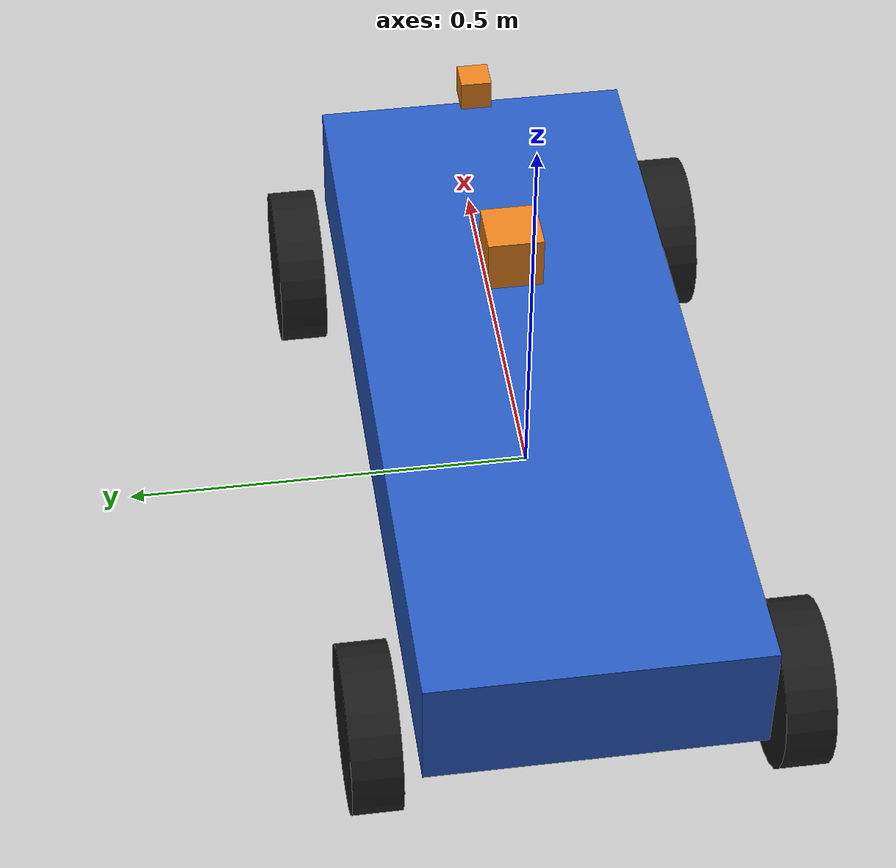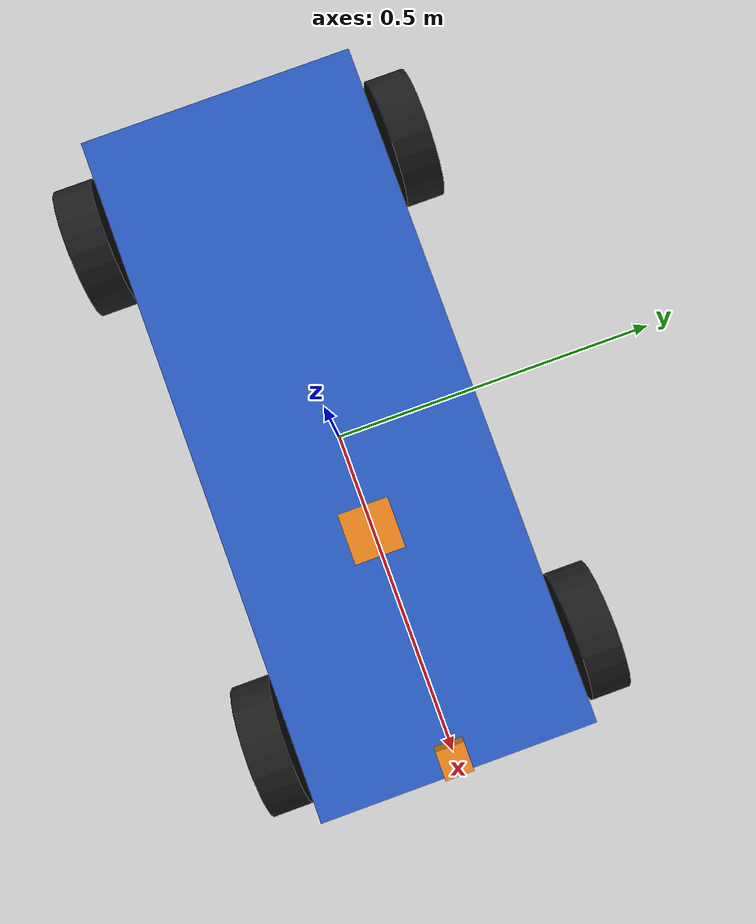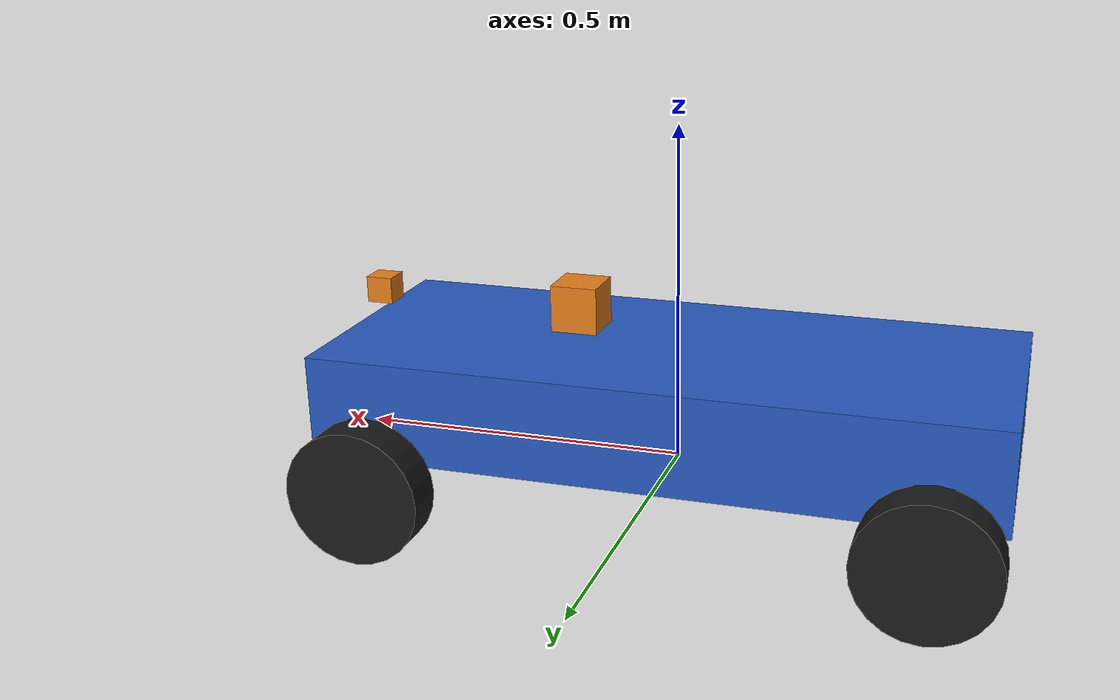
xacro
<?xml version="1.0"?>
<robot name="course_ackermann" xmlns:xacro="http://www.ros.org/wiki/xacro">

  <!-- ===== Parameters ===== -->
  <xacro:property name="wheelbase"       value="0.8"/>
  <xacro:property name="track_width"     value="0.5"/>
  <xacro:property name="wheel_radius"    value="0.1"/>
  <xacro:property name="wheel_width"     value="0.06"/>
  <xacro:property name="wheel_mass"      value="0.8"/>
  <xacro:property name="max_steer"       value="0.45"/>

  <xacro:property name="chassis_length"  value="1.0"/>
  <xacro:property name="chassis_width"   value="0.4"/>
  <xacro:property name="chassis_height"  value="0.15"/>
  <xacro:property name="chassis_z"       value="0.1"/>
  <xacro:property name="chassis_mass"    value="12.0"/>

  <xacro:property name="chassis_top"     value="${chassis_z + chassis_height / 2}"/>

  <xacro:property name="camera_x" value="${chassis_length / 2 - 0.03}"/>
  <xacro:property name="camera_z" value="${chassis_top + 0.05}"/>
  <xacro:property name="lidar_x"  value="0.15"/>
  <xacro:property name="lidar_z"  value="${chassis_top + 0.05}"/>
  <xacro:property name="imu_x"    value="0.0"/>
  <xacro:property name="imu_z"    value="${chassis_z}"/>

  <!-- ===== Materials ===== -->
  <material name="body"><color rgba="0.15 0.35 0.75 1"/></material>
  <material name="tire"><color rgba="0.1 0.1 0.1 1"/></material>
  <material name="sensor"><color rgba="0.9 0.5 0.1 1"/></material>

  <!-- ===== Inertia helpers ===== -->
  <xacro:macro name="box_inertial" params="m x y z *origin">
    <inertial>
      <xacro:insert_block name="origin"/>
      <mass value="${m}"/>
      <inertia ixx="${m * (y*y + z*z) / 12}" ixy="0" ixz="0"
               iyy="${m * (x*x + z*z) / 12}" iyz="0"
               izz="${m * (x*x + y*y) / 12}"/>
    </inertial>
  </xacro:macro>

  <!-- solid cylinder, axis along its own z -->
  <xacro:macro name="cylinder_inertial" params="m r h *origin">
    <inertial>
      <xacro:insert_block name="origin"/>
      <mass value="${m}"/>
      <inertia ixx="${m * (3*r*r + h*h) / 12}" ixy="0" ixz="0"
               iyy="${m * (3*r*r + h*h) / 12}" iyz="0"
               izz="${m * r * r / 2}"/>
    </inertial>
  </xacro:macro>

  <!-- ===== Chassis ===== -->
  <link name="base_link">
    <visual>
      <origin xyz="0 0 ${chassis_z}" rpy="0 0 0"/>
      <geometry><box size="${chassis_length} ${chassis_width} ${chassis_height}"/></geometry>
      <material name="body"/>
    </visual>
    <collision>
      <origin xyz="0 0 ${chassis_z}" rpy="0 0 0"/>
      <geometry><box size="${chassis_length} ${chassis_width} ${chassis_height}"/></geometry>
    </collision>
    <xacro:box_inertial m="${chassis_mass}" x="${chassis_length}" y="${chassis_width}" z="${chassis_height}">
      <origin xyz="0 0 ${chassis_z}" rpy="0 0 0"/>
    </xacro:box_inertial>
  </link>

  <!-- ===== Wheels ===== -->
  <xacro:macro name="wheel" params="name parent x y">
    <link name="${name}_wheel_link">
      <visual>
        <origin xyz="0 0 0" rpy="${pi/2} 0 0"/>
        <geometry><cylinder radius="${wheel_radius}" length="${wheel_width}"/></geometry>
        <material name="tire"/>
      </visual>
      <collision>
        <origin xyz="0 0 0" rpy="${pi/2} 0 0"/>
        <geometry><cylinder radius="${wheel_radius}" length="${wheel_width}"/></geometry>
      </collision>
      <xacro:cylinder_inertial m="${wheel_mass}" r="${wheel_radius}" h="${wheel_width}">
        <origin xyz="0 0 0" rpy="${pi/2} 0 0"/>
      </xacro:cylinder_inertial>
    </link>
    <joint name="${name}_wheel_joint" type="continuous">
      <parent link="${parent}"/>
      <child link="${name}_wheel_link"/>
      <origin xyz="${x} ${y} 0" rpy="0 0 0"/>
      <axis xyz="0 1 0"/>
    </joint>
  </xacro:macro>

  <!-- front wheels hang on a steering knuckle that rotates about z -->
  <xacro:macro name="steered_wheel" params="name y">
    <link name="${name}_steering_link">
      <xacro:box_inertial m="0.2" x="0.04" y="0.04" z="0.04">
        <origin xyz="0 0 0" rpy="0 0 0"/>
      </xacro:box_inertial>
    </link>
    <joint name="${name}_steering_joint" type="revolute">
      <parent link="base_link"/>
      <child link="${name}_steering_link"/>
      <origin xyz="${wheelbase / 2} ${y} 0" rpy="0 0 0"/>
      <axis xyz="0 0 1"/>
      <limit lower="${-max_steer}" upper="${max_steer}" effort="10.0" velocity="2.0"/>
    </joint>
    <xacro:wheel name="${name}" parent="${name}_steering_link" x="0" y="0"/>
  </xacro:macro>

  <xacro:wheel name="rear_left"  parent="base_link" x="${-wheelbase / 2}" y="${ track_width / 2}"/>
  <xacro:wheel name="rear_right" parent="base_link" x="${-wheelbase / 2}" y="${-track_width / 2}"/>
  <xacro:steered_wheel name="front_left"  y="${ track_width / 2}"/>
  <xacro:steered_wheel name="front_right" y="${-track_width / 2}"/>

  <!-- ===== Sensors (fixed joints, published by robot_state_publisher on /tf_static) ===== -->
  <xacro:macro name="sensor_link" params="name parent x y z size mass">
    <link name="${name}">
      <visual>
        <geometry><box size="${size} ${size} ${size}"/></geometry>
        <material name="sensor"/>
      </visual>
      <collision>
        <geometry><box size="${size} ${size} ${size}"/></geometry>
      </collision>
      <xacro:box_inertial m="${mass}" x="${size}" y="${size}" z="${size}">
        <origin xyz="0 0 0" rpy="0 0 0"/>
      </xacro:box_inertial>
    </link>
    <joint name="${name}_joint" type="fixed">
      <parent link="${parent}"/>
      <child link="${name}"/>
      <origin xyz="${x} ${y} ${z}" rpy="0 0 0"/>
    </joint>
  </xacro:macro>

  <xacro:sensor_link name="camera_link" parent="base_link" x="${camera_x}" y="0" z="${camera_z}" size="0.04" mass="0.1"/>
  <xacro:sensor_link name="lidar_link"  parent="base_link" x="${lidar_x}"  y="0" z="${lidar_z}"  size="0.07" mass="0.3"/>
  <xacro:sensor_link name="imu_link"    parent="base_link" x="${imu_x}"    y="0" z="${imu_z}"    size="0.02" mass="0.02"/>

</robot>
